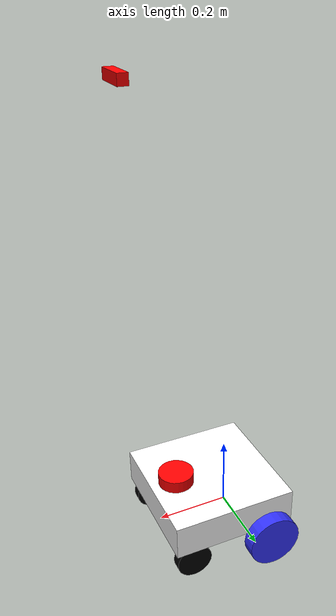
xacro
<?xml version="1.0"?>
<robot xmlns:xacro="http://www.ros.org/wiki/xacro"  name="robot">

    <xacro:arg name="use_ros2_control" default="true"/>

    <xacro:include filename="robot_core.xacro" />

    <xacro:include filename="gazebo_control.xacro" />
    <xacro:include filename="lidar.xacro"/>
    <xacro:include filename="camera.xacro"/>

</robot>

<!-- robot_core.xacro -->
<robot xmlns:xacro="http://www.ros.org/wiki/xacro" name="robot">

    <xacro:include filename="inertial_macros.xacro"/>

    <!-- Define materials -->
    <material name="white">
        <color rgba="1 1 1 1"/>
    </material>

    <material name="orange">
        <color rgba="1 0.3 0.1 1"/>
    </material>

    <material name="blue">
        <color rgba="0.2 0.2 1 1"/>
    </material>

    <material name="black">
        <color rgba="0 0 0 1"/>
    </material>

    <!-- BASE LINK -->
    <link name="base_link">
    </link>

    <!-- CHASSIS LINK -->
    <joint name="chassis_joint" type="fixed">
        <parent link="base_link"/>
        <child link="chassis"/>
        <origin xyz="-0.1 0 0"/>
    </joint>

    <link name="chassis">
        <visual>
            <origin xyz="0.15 0 0.07"/>
            <geometry>
                <box size="0.35 0.36 0.1"/>
            </geometry>
            <material name="white"/>
        </visual>
        <collision>
            <origin xyz="0.15 0 0.07"/>
            <geometry>
                <box size="0.35 0.36 0.1"/>
            </geometry>
        </collision>
        <xacro:inertial_box mass="0.5" x="0.35" y="0.36" z="0.1">
            <origin xyz="0.15 0 0.07" rpy="0 0 0"/>
        </xacro:inertial_box>
    </link>

    <gazebo reference="chassis">
        <material>Gazebo/White</material>
    </gazebo>

    <!-- LEFT WHEEL LINK -->
    <joint name="left_wheel_joint" type="continuous">
        <parent link="base_link"/>
        <child link="left_wheel"/>
        <origin xyz="-0.05 0.205 0" rpy="-${pi/2} 0 0"/>
        <axis xyz="0 0 1"/>
    </joint>

    <link name="left_wheel">
        <visual>
            <geometry>
                <cylinder radius="0.075" length="0.04"/>
            </geometry>
            <material name="blue"/>
        </visual>
        <collision>
            <geometry>
                <cylinder radius="0.075" length="0.04"/>
            </geometry>
        </collision>
        <xacro:inertial_cylinder mass="0.1" radius="0.075" length="0.04">
            <origin xyz="0 0 0" rpy="0 0 0"/>
        </xacro:inertial_cylinder>
    </link>

    <gazebo reference="left_wheel">
        <material>Gazebo/Blue</material>
    </gazebo>

    <!-- RIGHT WHEEL LINK -->
    <joint name="right_wheel_joint" type="continuous">
        <parent link="base_link"/>
        <child link="right_wheel"/>
        <origin xyz="-0.05 -0.205 0" rpy="-${pi/2} 0 0"/>
        <axis xyz="0 0 -1"/>
    </joint>

    <link name="right_wheel">
        <visual>
            <geometry>
                <cylinder radius="0.075" length="0.04"/>
            </geometry>
            <material name="blue"/>
        </visual>
        <collision>
            <geometry>
                <cylinder radius="0.075" length="0.04"/>
            </geometry>
        </collision>
        <xacro:inertial_cylinder mass="0.1" radius="0.075" length="0.04">
            <origin xyz="0 0 0" rpy="0 0 0"/>
        </xacro:inertial_cylinder>
    </link>

    <gazebo reference="right_wheel">
        <material>Gazebo/Blue</material>
    </gazebo>

    <!-- CASTER WHEEL LEFT LINK -->
    <joint name="caster_left_wheel_joint" type="fixed">
        <parent link="base_link"/>
        <child link="caster_left_wheel"/>
        <origin xyz="0.17 0.155 -0.025" rpy="-${pi/2} 0 0"/>
        <axis xyz="0 0 1"/>
    </joint>

    <link name="caster_left_wheel">
        <visual>
            <geometry>
                <cylinder radius="0.05" length="0.03"/>
            </geometry>
            <material name="black"/>
        </visual>
        <collision>
            <geometry>
                <cylinder radius="0.05" length="0.03"/>
            </geometry>
        </collision>
        <xacro:inertial_cylinder mass="0.1" radius="0.05" length="0.03">
            <origin xyz="0 0 0" rpy="0 0 0"/>
        </xacro:inertial_cylinder>
    </link>

    <gazebo reference="caster_left_wheel">
        <material>Gazebo/Black</material>
        <mu1 value="0.001"/>
        <mu2 value="0.001"/>
    </gazebo>

    <!-- CASTER WHEEL RIGHT LINK -->
    <joint name="caster_right_wheel_joint" type="fixed">
        <parent link="base_link"/>
        <child link="caster_right_wheel"/>
        <origin xyz="0.17 -0.155 -0.025" rpy="-${pi/2} 0 0"/>
        <axis xyz="0 0 -1"/>
    </joint>

    <link name="caster_right_wheel">
        <visual>
            <geometry>
                <cylinder radius="0.05" length="0.03"/>
            </geometry>
            <material name="black"/>
        </visual>
        <collision>
            <geometry>
                <cylinder radius="0.05" length="0.03"/>
            </geometry>
        </collision>
        <xacro:inertial_cylinder mass="0.1" radius="0.05" length="0.03">
            <origin xyz="0 0 0" rpy="0 0 0"/>
        </xacro:inertial_cylinder>
    </link>

    <gazebo reference="caster_right_wheel">
        <material>Gazebo/Black</material>
        <mu1 value="0.001"/>
        <mu2 value="0.001"/>
    </gazebo>

</robot>

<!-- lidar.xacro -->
<robot xmlns:xacro="http://www.ros.org/wiki/xacro" >

    <material name="red">
        <color rgba="1 0 0 1"/>
    </material>

    <joint name="laser_joint" type="fixed">
        <parent link="chassis"/>
        <child link="laser_frame"/>
        <origin xyz="0.25 0 0.135" rpy="0 0 0"/>
    </joint>

    <link name="laser_frame">
        <visual>
            <geometry>
                <cylinder radius="0.05" length="0.04"/>
            </geometry>
            <material name="red"/>
        </visual>
        <collision>
            <geometry>
                <cylinder radius="0.05" length="0.04"/>
            </geometry>
        </collision>
        <xacro:inertial_cylinder mass="0.1" length="0.04" radius="0.05">
            <origin xyz="0 0 0" rpy="0 0 0"/>
        </xacro:inertial_cylinder>
    </link>

    <gazebo reference="laser_frame">
        <material>Gazebo/Red</material>

        <sensor name="laser" type="ray">
            <pose> 0 0 0 0 0 0 </pose>
            <visualize>true</visualize>
            <update_rate>10</update_rate>
            <ray>
                <scan>
                    <horizontal>
                        <samples>360</samples>
                        <min_angle>-3.14</min_angle>
                        <max_angle>3.14</max_angle>
                    </horizontal>
                </scan>
                <range>
                    <min>0.3</min>
                    <max>12</max>
                </range>
            </ray>
            <plugin name="laser_controller" filename="libgazebo_ros_ray_sensor.so">
                <ros>
                    <argument>~/out:=scan</argument>
                </ros>
                <output_type>sensor_msgs/LaserScan</output_type>
                <frame_name>laser_frame</frame_name>
            </plugin>
        </sensor>
    </gazebo>

</robot>

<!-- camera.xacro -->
<robot xmlns:xacro="http://www.ros.org/wiki/xacro" >

    <joint name="camera_joint" type="fixed">
        <parent link="chassis"/>
        <child link="camera_link"/>
        <origin xyz="0.35 0 1.2" rpy="0 0 0"/>
    </joint>

    <link name="camera_link">
        <visual>
            <geometry>
                <box size="0.025 0.09 0.025"/>
            </geometry>
            <material name="red"/>
        </visual>
    </link>

    <joint name="camera_optical_joint" type="fixed">
        <parent link="camera_link"/>
        <child link="camera_link_optical"/>
        <origin xyz="0 0 0" rpy="${-pi/2} 0 ${-pi/2}"/>
    </joint>

    <link name="camera_link_optical"></link>

    <gazebo reference="camera_link">
        <material>Gazebo/Red</material>

        <sensor name="camera" type="camera">
            <pose> 0 0 0 0 0 0 </pose>
            <visualize>true</visualize>
            <update_rate>10</update_rate>
            <camera>
                <horizontal_fov>1.089</horizontal_fov>
                <image>
                    <format>R8G8B8</format>
                    <width>640</width>
                    <height>480</height>
                </image>
                <clip>
                    <near>0.05</near>
                    <far>8.0</far>
                </clip>
            </camera>
            <plugin name="camera_controller" filename="libgazebo_ros_camera.so">
                <frame_name>camera_link_optical</frame_name>
            </plugin>
        </sensor>
    </gazebo>

</robot>
